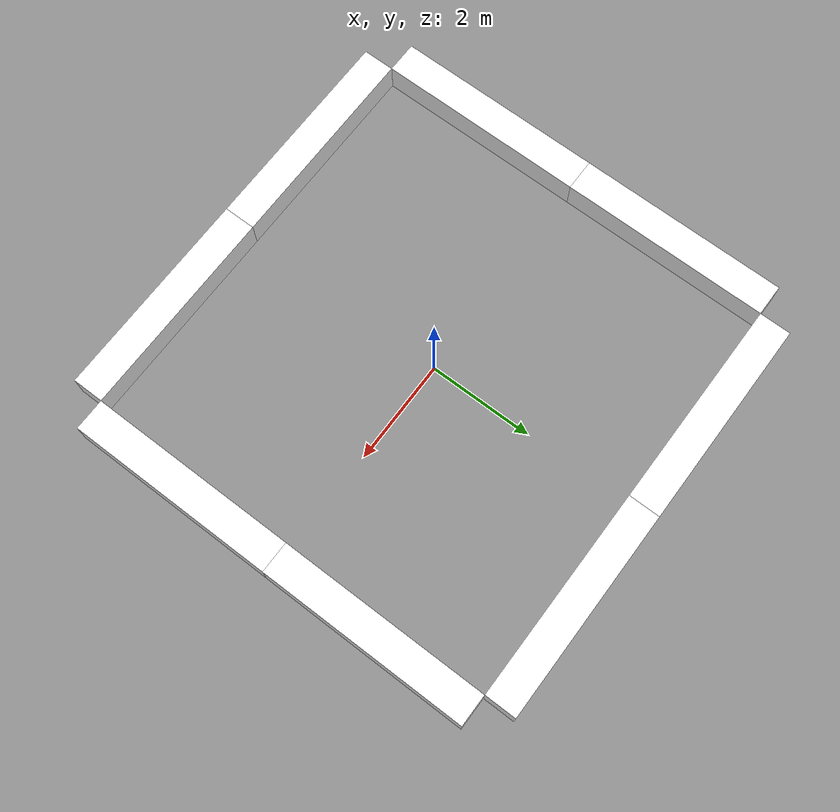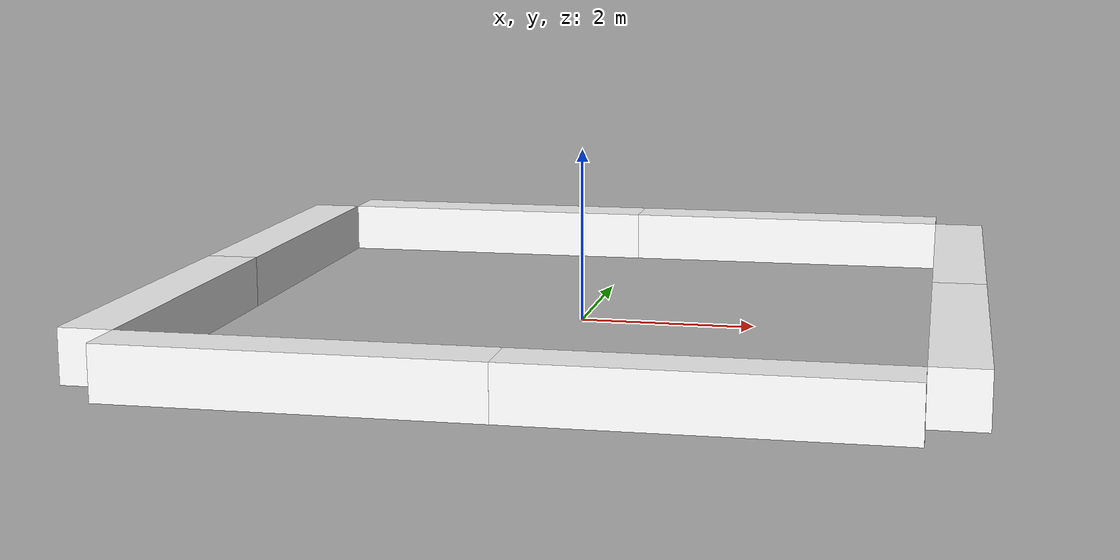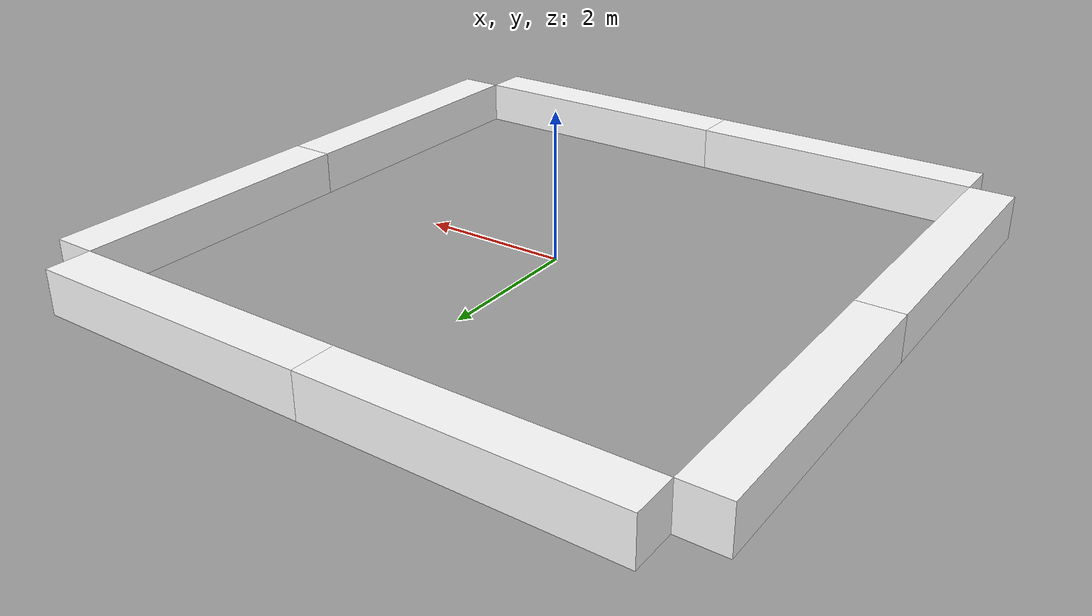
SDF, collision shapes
<?xml version="1.0" ?>
    <sdf version="1.5">
        <model name="a-frame">
            <static>true</static>

                <link name="right_up">
                    <pose>4.3 2.0 0.0 0 0 0.0</pose>
                    <collision name='right_up_collision'>
                        <pose>0.0 0.0 0.3 0 0 -1.5708</pose>
                            <geometry>
                                <box>
                                    <size>4.0 0.6 0.6</size>
                                </box>
                            </geometry>
                        <max_contacts>10</max_contacts>
                        <surface>
                            <bounce/>
                            <friction>
                            <ode/>
                            </friction>
                            <contact>
                            <ode/>
                            </contact>
                        </surface>
                    </collision>

                    <visual name='right_up_mesh'>
                        <pose>0.0 0.0 0.0 0 0 -1.5708</pose>
                        <geometry>
                        <mesh>
                            <uri>model://arena_a_frame/meshes/MCR2_arena_side.stl</uri>
                        </mesh>
                        </geometry>
                        <material>
                            <ambient>1 1 1 1</ambient>
                            <diffuse>1 1 1 1</diffuse>
                            <specular>1 1 1 1</specular>
                        </material>
                    </visual>

                <visual name='right_up_mcr2_logo'>
                        <pose>-0.07509 0.0 0.3759 0.785398 0.00 -1.5708</pose>
                        <geometry>
                            <plane>
                                    <normal>0 0 1</normal>
                                    <size>4.0 0.636396</size>
                            </plane>
                        </geometry>
                        <material>
                            <ambient>1.0 1.0 1.0 1</ambient>
                            <diffuse>1.0 1.0 1.0 1</diffuse>
                            <specular>1.0 1.0 1.0 1</specular>
                            <pbr>
                                <metal>
                                <albedo_map>model://arena_a_frame/materials/textures/mcr2_banner.png</albedo_map>
                                <normal_map>model://arena_a_frame/materials/textures/mcr2_banner.png</normal_map>
                                </metal>
                            </pbr>
                        </material>
                    </visual>
                </link>

                <link name="right_down">
                    <pose>4.3 -2.0 0.0 0 0 0.0</pose>
                    <collision name='right_down_collision'>
                        <pose>0.0 0.0 0.3 0 0 -1.5708</pose>
                            <geometry>
                                <box>
                                    <size>4.0 0.6 0.6</size>
                                </box>
                            </geometry>
                        <max_contacts>10</max_contacts>
                        <surface>
                            <bounce/>
                            <friction>
                            <ode/>
                            </friction>
                            <contact>
                            <ode/>
                            </contact>
                        </surface>
                    </collision>

                    <visual name='right_down_mesh'>
                        <pose>0.0 0.0 0.0 0 0 -1.5708</pose>
                        <geometry>
                        <mesh>
                            <uri>model://arena_a_frame/meshes/MCR2_arena_side.stl</uri>
                        </mesh>
                        </geometry>
                        <material>
                            <ambient>1 1 1 1</ambient>
                            <diffuse>1 1 1 1</diffuse>
                            <specular>1 1 1 1</specular>
                        </material>
                    </visual>

                <visual name='right_down_mcr2_logo'>
                        <pose>-0.07509 0.0 0.3759 0.785398 0.00 -1.5708</pose>
                        <geometry>
                            <plane>
                                    <normal>0 0 1</normal>
                                    <size>4.0 0.636396</size>
                            </plane>
                        </geometry>
                        <material>
                            <ambient>1.0 1.0 1.0 1</ambient>
                            <diffuse>1.0 1.0 1.0 1</diffuse>
                            <specular>1.0 1.0 1.0 1</specular>
                            <pbr>
                                <metal>
                                <albedo_map>model://arena_a_frame/materials/textures/mcr2_banner.png</albedo_map>
                                <normal_map>model://arena_a_frame/materials/textures/mcr2_banner.png</normal_map>
                                </metal>
                            </pbr>
                        </material>
                    </visual>
                </link>

                <link name="left_up">
                    <pose>-4.3 2.0 0.0 0 0 3.141592654</pose>
                    <collision name='left_up_collision'>
                        <pose>0.0 0.0 0.3 0 0 -1.5708</pose>
                            <geometry>
                                <box>
                                    <size>4.0 0.6 0.6</size>
                                </box>
                            </geometry>
                        <max_contacts>10</max_contacts>
                        <surface>
                            <bounce/>
                            <friction>
                            <ode/>
                            </friction>
                            <contact>
                            <ode/>
                            </contact>
                        </surface>
                    </collision>

                    <visual name='left_up_mesh'>
                        <pose>0.0 0.0 0.0 0 0 -1.5708</pose>
                        <geometry>
                        <mesh>
                            <uri>model://arena_a_frame/meshes/MCR2_arena_side.stl</uri>
                        </mesh>
                        </geometry>
                        <material>
                            <ambient>1 1 1 1</ambient>
                            <diffuse>1 1 1 1</diffuse>
                            <specular>1 1 1 1</specular>
                        </material>
                    </visual>

                <visual name='left_up_mcr2_logo'>
                        <pose>-0.07509 0.0 0.3759 0.785398 0.00 -1.5708</pose>
                        <geometry>
                            <plane>
                                    <normal>0 0 1</normal>
                                    <size>4.0 0.636396</size>
                            </plane>
                        </geometry>
                        <material>
                            <ambient>1.0 1.0 1.0 1</ambient>
                            <diffuse>1.0 1.0 1.0 1</diffuse>
                            <specular>1.0 1.0 1.0 1</specular>
                            <pbr>
                                <metal>
                                <albedo_map>model://arena_a_frame/materials/textures/mcr2_banner.png</albedo_map>
                                <normal_map>model://arena_a_frame/materials/textures/mcr2_banner.png</normal_map>
                                </metal>
                            </pbr>
                        </material>
                    </visual>
                </link>

                <link name="left_down">
                    <pose>-4.3 -2.0 0.0 0 0 3.141592654</pose>
                    <collision name='left_down_collision'>
                        <pose>0.0 0.0 0.3 0 0 -1.5708</pose>
                            <geometry>
                                <box>
                                    <size>4.0 0.6 0.6</size>
                                </box>
                            </geometry>
                        <max_contacts>10</max_contacts>
                        <surface>
                            <bounce/>
                            <friction>
                            <ode/>
                            </friction>
                            <contact>
                            <ode/>
                            </contact>
                        </surface>
                    </collision>

                    <visual name='left_down_mesh'>
                        <pose>0.0 0.0 0.0 0 0 -1.5708</pose>
                        <geometry>
                        <mesh>
                            <uri>model://arena_a_frame/meshes/MCR2_arena_side.stl</uri>
                        </mesh>
                        </geometry>
                        <material>
                            <ambient>1 1 1 1</ambient>
                            <diffuse>1 1 1 1</diffuse>
                            <specular>1 1 1 1</specular>
                        </material>
                    </visual>

                <visual name='left_down_mcr2_logo'>
                        <pose>-0.07509 0.0 0.3759 0.785398 0.00 -1.5708</pose>
                        <geometry>
                            <plane>
                                    <normal>0 0 1</normal>
                                    <size>4.0 0.636396</size>
                            </plane>
                        </geometry>
                        <material>
                            <ambient>1.0 1.0 1.0 1</ambient>
                            <diffuse>1.0 1.0 1.0 1</diffuse>
                            <specular>1.0 1.0 1.0 1</specular>
                            <pbr>
                                <metal>
                                <albedo_map>model://arena_a_frame/materials/textures/mcr2_banner.png</albedo_map>
                                <normal_map>model://arena_a_frame/materials/textures/mcr2_banner.png</normal_map>
                                </metal>
                            </pbr>
                        </material>
                    </visual>
                </link>

                <link name="bottom_right">
                    <pose>2.0 -4.3 0.0 0 0 -1.5708</pose>
                    <collision name='bottom_right_collision'>
                        <pose>0.0 0.0 0.3 0 0 -1.5708</pose>
                            <geometry>
                                <box>
                                    <size>4.0 0.6 0.6</size>
                                </box>
                            </geometry>
                        <max_contacts>10</max_contacts>
                        <surface>
                            <bounce/>
                            <friction>
                            <ode/>
                            </friction>
                            <contact>
                            <ode/>
                            </contact>
                        </surface>
                    </collision>

                    <visual name='bottom_right_mesh'>
                        <pose>0.0 0.0 0.0 0 0 -1.5708</pose>
                        <geometry>
                        <mesh>
                            <uri>model://arena_a_frame/meshes/MCR2_arena_side.stl</uri>
                        </mesh>
                        </geometry>
                        <material>
                            <ambient>1 1 1 1</ambient>
                            <diffuse>1 1 1 1</diffuse>
                            <specular>1 1 1 1</specular>
                        </material>
                    </visual>

                <visual name='bottom_right_mcr2_logo'>
                        <pose>-0.07509 0.0 0.3759 0.785398 0.0 -1.5708</pose>
                        <geometry>
                            <plane>
                                    <normal>0 0 1</normal>
                                    <size>4.0 0.636396</size>
                            </plane>
                        </geometry>
                        <material>
                            <ambient>1.0 1.0 1.0 1</ambient>
                            <diffuse>1.0 1.0 1.0 1</diffuse>
                            <specular>1.0 1.0 1.0 1</specular>
                            <pbr>
                                <metal>
                                <albedo_map>model://arena_a_frame/materials/textures/mcr2_banner.png</albedo_map>
                                <normal_map>model://arena_a_frame/materials/textures/mcr2_banner.png</normal_map>
                                </metal>
                            </pbr>
                        </material>
                    </visual>
                </link>

                <link name="bottom_left">
                    <pose>-2.0 -4.3 0.0 0 0 -1.5708</pose>
                    <collision name='bottom_left_collision'>
                        <pose>0.0 0.0 0.3 0 0 -1.5708</pose>
                            <geometry>
                                <box>
                                    <size>4.0 0.6 0.6</size>
                                </box>
                            </geometry>
                        <max_contacts>10</max_contacts>
                        <surface>
                            <bounce/>
                            <friction>
                            <ode/>
                            </friction>
                            <contact>
                            <ode/>
                            </contact>
                        </surface>
                    </collision>

                    <visual name='bottom_left_mesh'>
                        <pose>0.0 0.0 0.0 0 0 -1.5708</pose>
                        <geometry>
                        <mesh>
                            <uri>model://arena_a_frame/meshes/MCR2_arena_side.stl</uri>
                        </mesh>
                        </geometry>
                        <material>
                            <ambient>1 1 1 1</ambient>
                            <diffuse>1 1 1 1</diffuse>
                            <specular>1 1 1 1</specular>
                        </material>
                    </visual>

                <visual name='bottom_left_mcr2_logo'>
                        <pose>-0.07509 0.0 0.3759 0.785398 0.0 -1.5708</pose>
                        <geometry>
                            <plane>
                                    <normal>0 0 1</normal>
                                    <size>4.0 0.636396</size>
                            </plane>
                        </geometry>
                        <material>
                            <ambient>1.0 1.0 1.0 1</ambient>
                            <diffuse>1.0 1.0 1.0 1</diffuse>
                            <specular>1.0 1.0 1.0 1</specular>
                            <pbr>
                                <metal>
                                <albedo_map>model://arena_a_frame/materials/textures/mcr2_banner.png</albedo_map>
                                <normal_map>model://arena_a_frame/materials/textures/mcr2_banner.png</normal_map>
                                </metal>
                            </pbr>
                        </material>
                    </visual>
                </link>

                <link name="top_right">
                    <pose>2.0 4.3 0.0 0 0 1.5708</pose>
                    <collision name='top_right_collision'>
                        <pose>0.0 0.0 0.3 0 0 -1.5708</pose>
                            <geometry>
                                <box>
                                    <size>4.0 0.6 0.6</size>
                                </box>
                            </geometry>
                        <max_contacts>10</max_contacts>
                        <surface>
                            <bounce/>
                            <friction>
                            <ode/>
                            </friction>
                            <contact>
                            <ode/>
                            </contact>
                        </surface>
                    </collision>

                    <visual name='top_right_mesh'>
                        <pose>0.0 0.0 0.0 0 0 -1.5708</pose>
                        <geometry>
                        <mesh>
                            <uri>model://arena_a_frame/meshes/MCR2_arena_side.stl</uri>
                        </mesh>
                        </geometry>
                        <material>
                            <ambient>1 1 1 1</ambient>
                            <diffuse>1 1 1 1</diffuse>
                            <specular>1 1 1 1</specular>
                        </material>
                    </visual>

                <visual name='top_right_mcr2_logo'>
                        <pose>-0.07509 0.0 0.3759 0.785398 0.0 -1.5708</pose>
                        <geometry>
                            <plane>
                                    <normal>0 0 1</normal>
                                    <size>4.0 0.636396</size>
                            </plane>
                        </geometry>
                        <material>
                            <ambient>1.0 1.0 1.0 1</ambient>
                            <diffuse>1.0 1.0 1.0 1</diffuse>
                            <specular>1.0 1.0 1.0 1</specular>
                            <pbr>
                                <metal>
                                <albedo_map>model://arena_a_frame/materials/textures/mcr2_banner.png</albedo_map>
                                <normal_map>model://arena_a_frame/materials/textures/mcr2_banner.png</normal_map>
                                </metal>
                            </pbr>
                        </material>
                    </visual>
                </link>

                <link name="top_left">
                    <pose>-2.0 4.3 0.0 0 0 1.5708</pose>
                    <collision name='top_left_collision'>
                        <pose>0.0 0.0 0.3 0 0 -1.5708</pose>
                            <geometry>
                                <box>
                                    <size>4.0 0.6 0.6</size>
                                </box>
                            </geometry>
                        <max_contacts>10</max_contacts>
                        <surface>
                            <bounce/>
                            <friction>
                            <ode/>
                            </friction>
                            <contact>
                            <ode/>
                            </contact>
                        </surface>
                    </collision>

                    <visual name='top_left_mesh'>
                        <pose>0.0 0.0 0.0 0 0 -1.5708</pose>
                        <geometry>
                        <mesh>
                            <uri>model://arena_a_frame/meshes/MCR2_arena_side.stl</uri>
                        </mesh>
                        </geometry>
                        <material>
                            <ambient>1 1 1 1</ambient>
                            <diffuse>1 1 1 1</diffuse>
                            <specular>1 1 1 1</specular>
                        </material>
                    </visual>

                <visual name='top_left_mcr2_logo'>
                        <pose>-0.07509 0.0 0.3759 0.785398 0.0 -1.5708</pose>
                        <geometry>
                            <plane>
                                    <normal>0 0 1</normal>
                                    <size>4.0 0.636396</size>
                            </plane>
                        </geometry>
                        <material>
                            <ambient>1.0 1.0 1.0 1</ambient>
                            <diffuse>1.0 1.0 1.0 1</diffuse>
                            <specular>1.0 1.0 1.0 1</specular>
                            <pbr>
                                <metal>
                                <albedo_map>model://arena_a_frame/materials/textures/mcr2_banner.png</albedo_map>
                                <normal_map>model://arena_a_frame/materials/textures/mcr2_banner.png</normal_map>
                                </metal>
                            </pbr>
                        </material>
                    </visual>
                </link>
        </model>
    </sdf>
